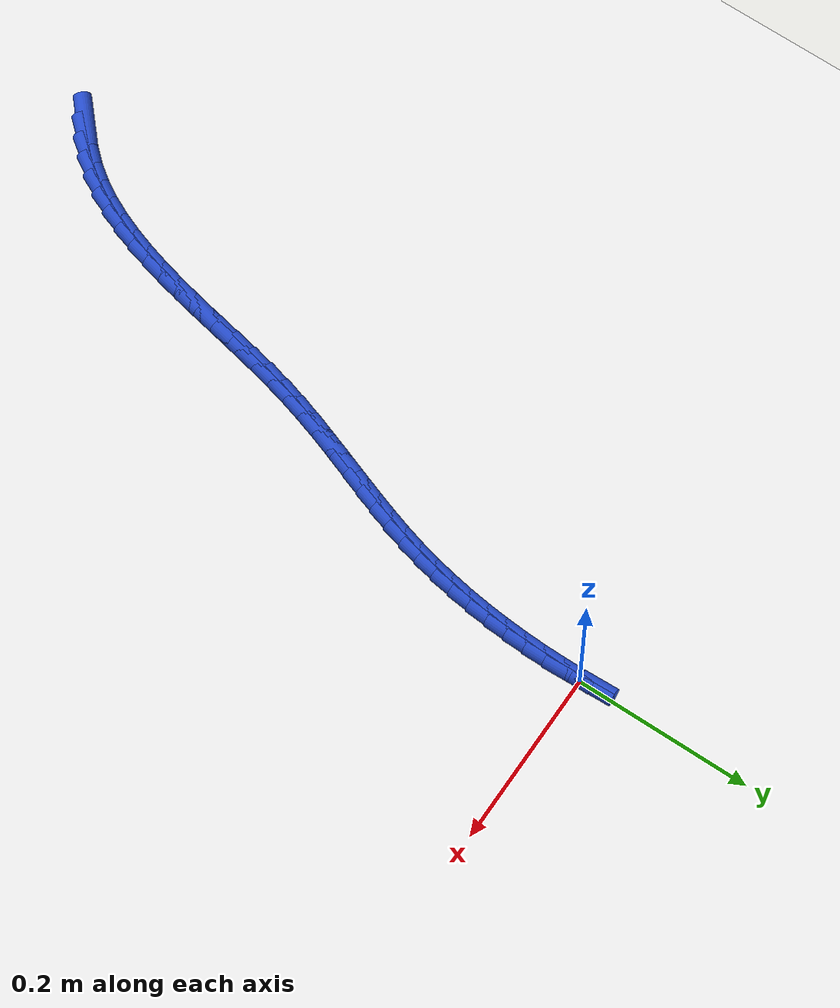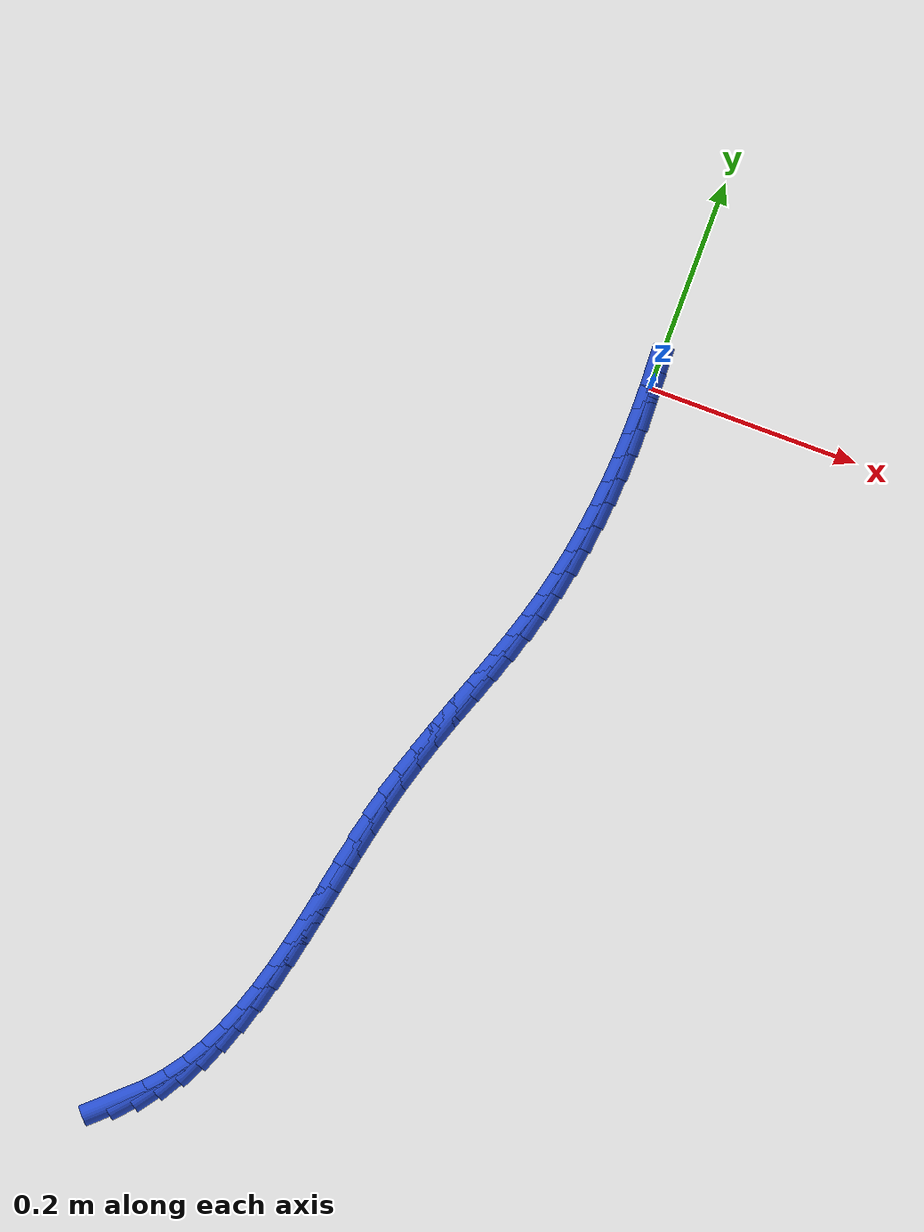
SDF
<sdf version="1.6">
 <world name="default">
  <model name="ground_plane">
   <static>1</static>
   <link name="link">
    <collision name="collision">
     <geometry><plane><normal>0 0 1</normal><size>100 100</size></plane></geometry>
     <surface><friction><ode><mu>100</mu><mu2>50</mu2></ode></friction></surface>
    </collision>
    <visual name="visual">
     <cast_shadows>0</cast_shadows>
     <geometry><plane><normal>0 0 1</normal><size>100 100</size></plane></geometry>
     <material>
      <script><uri>file://media/materials/scripts/gazebo.material</uri><name>Gazebo/WhiteGlow</name></script>
     </material>
    </visual>
   </link>
  </model>
  <model name="line">
   <link name="link_0">
    <pose>7.806255641895632e-18 5.551115123125783e-17 0.01 0 1.57 -1.534259723777564</pose>
    <collision name="collision">
     <geometry><cylinder><radius>0.01</radius><length>0.08</length></cylinder></geometry>
    </collision>
    <visual name="visual">
     <material>
      <script><name>Gazebo/Blue</name><uri>file://media/materials/scripts/gazebo.material</uri></script>
     </material>
     <geometry><cylinder><radius>0.01</radius><length>0.08</length></cylinder></geometry>
    </visual>
   </link>
   <link name="link_256">
    <pose>-0.22809802172163016 -0.77640930404311 0.01 0 1.57 0.7332633907485274</pose>
    <collision name="collision">
     <geometry><cylinder><radius>0.01</radius><length>0.08</length></cylinder></geometry>
    </collision>
    <visual name="visual">
     <material>
      <script><name>Gazebo/Blue</name><uri>file://media/materials/scripts/gazebo.material</uri></script>
     </material>
     <geometry><cylinder><radius>0.01</radius><length>0.08</length></cylinder></geometry>
    </visual>
   </link>
   <link name="link_257">
    <pose>-0.2110574295263247 -0.7610589386976084 0.01 0 1.57 0.8399089148367916</pose>
    <collision name="collision">
     <geometry><cylinder><radius>0.01</radius><length>0.08</length></cylinder></geometry>
    </collision>
    <visual name="visual">
     <material>
      <script><name>Gazebo/Blue</name><uri>file://media/materials/scripts/gazebo.material</uri></script>
     </material>
     <geometry><cylinder><radius>0.01</radius><length>0.08</length></cylinder></geometry>
    </visual>
   </link>
   <link name="link_258">
    <pose>-0.1959354303326874 -0.7441914386461449 0.01 0 1.57 0.9434862058500849</pose>
    <collision name="collision">
     <geometry><cylinder><radius>0.01</radius><length>0.08</length></cylinder></geometry>
    </collision>
    <visual name="visual">
     <material>
      <script><name>Gazebo/Blue</name><uri>file://media/materials/scripts/gazebo.material</uri></script>
     </material>
     <geometry><cylinder><radius>0.01</radius><length>0.08</length></cylinder></geometry>
    </visual>
   </link>
   <link name="link_259">
    <pose>-0.18265250061116223 -0.7258702306286882 0.01 0 1.57 1.035979636694203</pose>
    <collision name="collision">
     <geometry><cylinder><radius>0.01</radius><length>0.08</length></cylinder></geometry>
    </collision>
    <visual name="visual">
     <material>
      <script><name>Gazebo/Blue</name><uri>file://media/materials/scripts/gazebo.material</uri></script>
     </material>
     <geometry><cylinder><radius>0.01</radius><length>0.08</length></cylinder></geometry>
    </visual>
   </link>
   <link name="link_260">
    <pose>-0.17102246303565777 -0.7062383483268952 0.01 0 1.57 1.1162807070867804</pose>
    <collision name="collision">
     <geometry><cylinder><radius>0.01</radius><length>0.08</length></cylinder></geometry>
    </collision>
    <visual name="visual">
     <material>
      <script><name>Gazebo/Blue</name><uri>file://media/materials/scripts/gazebo.material</uri></script>
     </material>
     <geometry><cylinder><radius>0.01</radius><length>0.08</length></cylinder></geometry>
    </visual>
   </link>
   <link name="link_261">
    <pose>-0.16085907796661833 -0.6854388719335126 0.01 0 1.57 1.1842461645669415</pose>
    <collision name="collision">
     <geometry><cylinder><radius>0.01</radius><length>0.08</length></cylinder></geometry>
    </collision>
    <visual name="visual">
     <material>
      <script><name>Gazebo/Blue</name><uri>file://media/materials/scripts/gazebo.material</uri></script>
     </material>
     <geometry><cylinder><radius>0.01</radius><length>0.08</length></cylinder></geometry>
    </visual>
   </link>
   <link name="link_262">
    <pose>-0.1519761057644882 -0.6636148816412869 0.01 0 1.57 1.2403381035729661</pose>
    <collision name="collision">
     <geometry><cylinder><radius>0.01</radius><length>0.08</length></cylinder></geometry>
    </collision>
    <visual name="visual">
     <material>
      <script><name>Gazebo/Blue</name><uri>file://media/materials/scripts/gazebo.material</uri></script>
     </material>
     <geometry><cylinder><radius>0.01</radius><length>0.08</length></cylinder></geometry>
    </visual>
   </link>
   <link name="link_263">
    <pose>-0.14418730678971167 -0.6409094576429657 0.01 0 1.57 1.2853088688508296</pose>
    <collision name="collision">
     <geometry><cylinder><radius>0.01</radius><length>0.08</length></cylinder></geometry>
    </collision>
    <visual name="visual">
     <material>
      <script><name>Gazebo/Blue</name><uri>file://media/materials/scripts/gazebo.material</uri></script>
     </material>
     <geometry><cylinder><radius>0.01</radius><length>0.08</length></cylinder></geometry>
    </visual>
   </link>
   <link name="link_264">
    <pose>-0.13730644140273296 -0.6174656801312951 0.01 0 1.57 1.3199766243583169</pose>
    <collision name="collision">
     <geometry><cylinder><radius>0.01</radius><length>0.08</length></cylinder></geometry>
    </collision>
    <visual name="visual">
     <material>
      <script><name>Gazebo/Blue</name><uri>file://media/materials/scripts/gazebo.material</uri></script>
     </material>
     <geometry><cylinder><radius>0.01</radius><length>0.08</length></cylinder></geometry>
    </visual>
   </link>
   <link name="link_265">
    <pose>-0.1311472699639966 -0.5934266292990232 0.01 0 1.57 1.3450874147993896</pose>
    <collision name="collision">
     <geometry><cylinder><radius>0.01</radius><length>0.08</length></cylinder></geometry>
    </collision>
    <visual name="visual">
     <material>
      <script><name>Gazebo/Blue</name><uri>file://media/materials/scripts/gazebo.material</uri></script>
     </material>
     <geometry><cylinder><radius>0.01</radius><length>0.08</length></cylinder></geometry>
    </visual>
   </link>
   <link name="link_266">
    <pose>-0.1255235528339463 -0.5689353853388951 0.01 0 1.57 1.3612401615556298</pose>
    <collision name="collision">
     <geometry><cylinder><radius>0.01</radius><length>0.08</length></cylinder></geometry>
    </collision>
    <visual name="visual">
     <material>
      <script><name>Gazebo/Blue</name><uri>file://media/materials/scripts/gazebo.material</uri></script>
     </material>
     <geometry><cylinder><radius>0.01</radius><length>0.08</length></cylinder></geometry>
    </visual>
   </link>
   <link name="link_267">
    <pose>-0.12024905037302668 -0.5441350284436582 0.01 0 1.57 1.368850762135678</pose>
    <collision name="collision">
     <geometry><cylinder><radius>0.01</radius><length>0.08</length></cylinder></geometry>
    </collision>
    <visual name="visual">
     <material>
      <script><name>Gazebo/Blue</name><uri>file://media/materials/scripts/gazebo.material</uri></script>
     </material>
     <geometry><cylinder><radius>0.01</radius><length>0.08</length></cylinder></geometry>
    </visual>
   </link>
   <link name="link_268">
    <pose>-0.11513752294168196 -0.5191686388060596 0.01 0 1.57 1.368137822692759</pose>
    <collision name="collision">
     <geometry><cylinder><radius>0.01</radius><length>0.08</length></cylinder></geometry>
    </collision>
    <visual name="visual">
     <material>
      <script><name>Gazebo/Blue</name><uri>file://media/materials/scripts/gazebo.material</uri></script>
     </material>
     <geometry><cylinder><radius>0.01</radius><length>0.08</length></cylinder></geometry>
    </visual>
   </link>
   <link name="link_269">
    <pose>-0.11000273090035637 -0.4941792966188459 0.01 0 1.57 1.359119513859135</pose>
    <collision name="collision">
     <geometry><cylinder><radius>0.01</radius><length>0.08</length></cylinder></geometry>
    </collision>
    <visual name="visual">
     <material>
      <script><name>Gazebo/Blue</name><uri>file://media/materials/scripts/gazebo.material</uri></script>
     </material>
     <geometry><cylinder><radius>0.01</radius><length>0.08</length></cylinder></geometry>
    </visual>
   </link>
   <link name="link_270">
    <pose>-0.10465843460949419 -0.4693100820747641 0.01 0 1.57 1.341616864782396</pose>
    <collision name="collision">
     <geometry><cylinder><radius>0.01</radius><length>0.08</length></cylinder></geometry>
    </collision>
    <visual name="visual">
     <material>
      <script><name>Gazebo/Blue</name><uri>file://media/materials/scripts/gazebo.material</uri></script>
     </material>
     <geometry><cylinder><radius>0.01</radius><length>0.08</length></cylinder></geometry>
    </visual>
   </link>
   <link name="link_271">
    <pose>-0.0989183944295397 -0.444704075366561 0.01 0 1.57 1.3152636851727741</pose>
    <collision name="collision">
     <geometry><cylinder><radius>0.01</radius><length>0.08</length></cylinder></geometry>
    </collision>
    <visual name="visual">
     <material>
      <script><name>Gazebo/Blue</name><uri>file://media/materials/scripts/gazebo.material</uri></script>
     </material>
     <geometry><cylinder><radius>0.01</radius><length>0.08</length></cylinder></geometry>
    </visual>
   </link>
   <link name="link_272">
    <pose>-0.09259637072093717 -0.4205043566869834 0.01 0 1.57 1.2821805010189478</pose>
    <collision name="collision">
     <geometry><cylinder><radius>0.01</radius><length>0.08</length></cylinder></geometry>
    </collision>
    <visual name="visual">
     <material>
      <script><name>Gazebo/Blue</name><uri>file://media/materials/scripts/gazebo.material</uri></script>
     </material>
     <geometry><cylinder><radius>0.01</radius><length>0.08</length></cylinder></geometry>
    </visual>
   </link>
   <link name="link_273">
    <pose>-0.0855632964951431 -0.3968164727436581 0.01 0 1.57 1.253626145950538</pose>
    <collision name="collision">
     <geometry><cylinder><radius>0.01</radius><length>0.08</length></cylinder></geometry>
    </collision>
    <visual name="visual">
     <material>
      <script><name>Gazebo/Blue</name><uri>file://media/materials/scripts/gazebo.material</uri></script>
     </material>
     <geometry><cylinder><radius>0.01</radius><length>0.08</length></cylinder></geometry>
    </visual>
   </link>
   <link name="link_274">
    <pose>-0.07793713071359887 -0.373583799264664 0.01 0 1.57 1.2330572966481768</pose>
    <collision name="collision">
     <geometry><cylinder><radius>0.01</radius><length>0.08</length></cylinder></geometry>
    </collision>
    <visual name="visual">
     <material>
      <script><name>Gazebo/Blue</name><uri>file://media/materials/scripts/gazebo.material</uri></script>
     </material>
     <geometry><cylinder><radius>0.01</radius><length>0.08</length></cylinder></geometry>
    </visual>
   </link>
   <link name="link_275">
    <pose>-0.0699025342981859 -0.3507059225613688 0.01 0 1.57 1.220790670963137</pose>
    <collision name="collision">
     <geometry><cylinder><radius>0.01</radius><length>0.08</length></cylinder></geometry>
    </collision>
    <visual name="visual">
     <material>
      <script><name>Gazebo/Blue</name><uri>file://media/materials/scripts/gazebo.material</uri></script>
     </material>
     <geometry><cylinder><radius>0.01</radius><length>0.08</length></cylinder></geometry>
    </visual>
   </link>
   <link name="link_276">
    <pose>-0.06164416921985077 -0.3280824282564354 0.01 0 1.57 1.2170527903231554</pose>
    <collision name="collision">
     <geometry><cylinder><radius>0.01</radius><length>0.08</length></cylinder></geometry>
    </collision>
    <visual name="visual">
     <material>
      <script><name>Gazebo/Blue</name><uri>file://media/materials/scripts/gazebo.material</uri></script>
     </material>
     <geometry><cylinder><radius>0.01</radius><length>0.08</length></cylinder></geometry>
    </visual>
   </link>
   <link name="link_277">
    <pose>-0.05334669744954009 -0.30561290197252716 0.01 0 1.57 1.2219995665049825</pose>
    <collision name="collision">
     <geometry><cylinder><radius>0.01</radius><length>0.08</length></cylinder></geometry>
    </collision>
    <visual name="visual">
     <material>
      <script><name>Gazebo/Blue</name><uri>file://media/materials/scripts/gazebo.material</uri></script>
     </material>
     <geometry><cylinder><radius>0.01</radius><length>0.08</length></cylinder></geometry>
    </visual>
   </link>
   <link name="link_278">
    <pose>-0.04519478095820042 -0.2831969293323071 0.01 0 1.57 1.2357203852099319</pose>
    <collision name="collision">
     <geometry><cylinder><radius>0.01</radius><length>0.08</length></cylinder></geometry>
    </collision>
    <visual name="visual">
     <material>
      <script><name>Gazebo/Blue</name><uri>file://media/materials/scripts/gazebo.material</uri></script>
     </material>
     <geometry><cylinder><radius>0.01</radius><length>0.08</length></cylinder></geometry>
    </visual>
   </link>
   <link name="link_279">
    <pose>-0.03737308171677832 -0.2607340959584381 0.01 0 1.57 1.2582240430556448</pose>
    <collision name="collision">
     <geometry><cylinder><radius>0.01</radius><length>0.08</length></cylinder></geometry>
    </collision>
    <visual name="visual">
     <material>
      <script><name>Gazebo/Blue</name><uri>file://media/materials/scripts/gazebo.material</uri></script>
     </material>
     <geometry><cylinder><radius>0.01</radius><length>0.08</length></cylinder></geometry>
    </visual>
   </link>
   <link name="link_280">
    <pose>-0.030066261696220592 -0.23812398747358413 0.01 0 1.57 1.2894060500924969</pose>
    <collision name="collision">
     <geometry><cylinder><radius>0.01</radius><length>0.08</length></cylinder></geometry>
    </collision>
    <visual name="visual">
     <material>
      <script><name>Gazebo/Blue</name><uri>file://media/materials/scripts/gazebo.material</uri></script>
     </material>
     <geometry><cylinder><radius>0.01</radius><length>0.08</length></cylinder></geometry>
    </visual>
   </link>
   <link name="link_281">
    <pose>-0.02345898286747334 -0.21526618950040682 0.01 0 1.57 1.327361125490638</pose>
    <collision name="collision">
     <geometry><cylinder><radius>0.01</radius><length>0.08</length></cylinder></geometry>
    </collision>
    <visual name="visual">
     <material>
      <script><name>Gazebo/Blue</name><uri>file://media/materials/scripts/gazebo.material</uri></script>
     </material>
     <geometry><cylinder><radius>0.01</radius><length>0.08</length></cylinder></geometry>
    </visual>
   </link>
   <link name="link_282">
    <pose>-0.017701528535700038 -0.1920843645947685 0.01 0 1.57 1.3650678119260202</pose>
    <collision name="collision">
     <geometry><cylinder><radius>0.01</radius><length>0.08</length></cylinder></geometry>
    </collision>
    <visual name="visual">
     <material>
      <script><name>Gazebo/Blue</name><uri>file://media/materials/scripts/gazebo.material</uri></script>
     </material>
     <geometry><cylinder><radius>0.01</radius><length>0.08</length></cylinder></geometry>
    </visual>
   </link>
   <link name="link_283">
    <pose>-0.012801262558759382 -0.16860226825991861 0.01 0 1.57 1.400837919795517</pose>
    <collision name="collision">
     <geometry><cylinder><radius>0.01</radius><length>0.08</length></cylinder></geometry>
    </collision>
    <visual name="visual">
     <material>
      <script><name>Gazebo/Blue</name><uri>file://media/materials/scripts/gazebo.material</uri></script>
     </material>
     <geometry><cylinder><radius>0.01</radius><length>0.08</length></cylinder></geometry>
    </visual>
   </link>
   <link name="link_284">
    <pose>-0.00872841505081845 -0.14486966243786462 0.01 0 1.57 1.4347944567385682</pose>
    <collision name="collision">
     <geometry><cylinder><radius>0.01</radius><length>0.08</length></cylinder></geometry>
    </collision>
    <visual name="visual">
     <material>
      <script><name>Gazebo/Blue</name><uri>file://media/materials/scripts/gazebo.material</uri></script>
     </material>
     <geometry><cylinder><radius>0.01</radius><length>0.08</length></cylinder></geometry>
    </visual>
   </link>
   <link name="link_285">
    <pose>-0.005453216050231391 -0.12093630912370903 0.01 0 1.57 1.467064155028711</pose>
    <collision name="collision">
     <geometry><cylinder><radius>0.01</radius><length>0.08</length></cylinder></geometry>
    </collision>
    <visual name="visual">
     <material>
      <script><name>Gazebo/Blue</name><uri>file://media/materials/scripts/gazebo.material</uri></script>
     </material>
     <geometry><cylinder><radius>0.01</radius><length>0.08</length></cylinder></geometry>
    </visual>
   </link>
   <link name="link_286">
    <pose>-0.0029458955953523807 -0.09685197031255456 0.01 0 1.57 1.4977748205113544</pose>
    <collision name="collision">
     <geometry><cylinder><radius>0.01</radius><length>0.08</length></cylinder></geometry>
    </collision>
    <visual name="visual">
     <material>
      <script><name>Gazebo/Blue</name><uri>file://media/materials/scripts/gazebo.material</uri></script>
     </material>
     <geometry><cylinder><radius>0.01</radius><length>0.08</length></cylinder></geometry>
    </visual>
   </link>
   <link name="link_287">
    <pose>-0.0011766837245355745 -0.07266640799950383 0.01 0 1.57 1.527053475696436</pose>
    <collision name="collision">
     <geometry><cylinder><radius>0.01</radius><length>0.08</length></cylinder></geometry>
    </collision>
    <visual name="visual">
     <material>
      <script><name>Gazebo/Blue</name><uri>file://media/materials/scripts/gazebo.material</uri></script>
     </material>
     <geometry><cylinder><radius>0.01</radius><length>0.08</length></cylinder></geometry>
    </visual>
   </link>
   <link name="link_288">
    <pose>-0.00011581047613513354 -0.04842938417965936 0.01 0 1.57 1.555025162404352</pose>
    <collision name="collision">
     <geometry><cylinder><radius>0.01</radius><length>0.08</length></cylinder></geometry>
    </collision>
    <visual name="visual">
     <material>
      <script><name>Gazebo/Blue</name><uri>file://media/materials/scripts/gazebo.material</uri></script>
     </material>
     <geometry><cylinder><radius>0.01</radius><length>0.08</length></cylinder></geometry>
    </visual>
   </link>
   <link name="link_289">
    <pose>0.00026649411149478035 -0.024190660848123817 0.01 0 1.57 -1.5597803676496145</pose>
    <collision name="collision">
     <geometry><cylinder><radius>0.01</radius><length>0.08</length></cylinder></geometry>
    </collision>
    <visual name="visual">
     <material>
      <script><name>Gazebo/Blue</name><uri>file://media/materials/scripts/gazebo.material</uri></script>
     </material>
     <geometry><cylinder><radius>0.01</radius><length>0.08</length></cylinder></geometry>
    </visual>
   </link>
   <link name="link_290">
    <pose>3.469446951953614e-18 1.6653345369377348e-16 0.01 0 1.57 -1.5340582521693773</pose>
    <collision name="collision">
     <geometry><cylinder><radius>0.01</radius><length>0.08</length></cylinder></geometry>
    </collision>
    <visual name="visual">
     <material>
      <script><name>Gazebo/Blue</name><uri>file://media/materials/scripts/gazebo.material</uri></script>
     </material>
     <geometry><cylinder><radius>0.01</radius><length>0.08</length></cylinder></geometry>
    </visual>
   </link>
  </model>
 </world>
</sdf>
